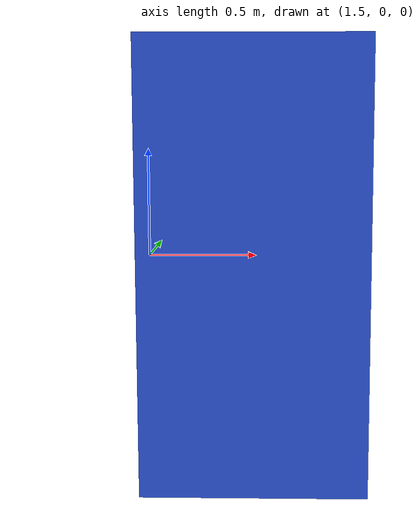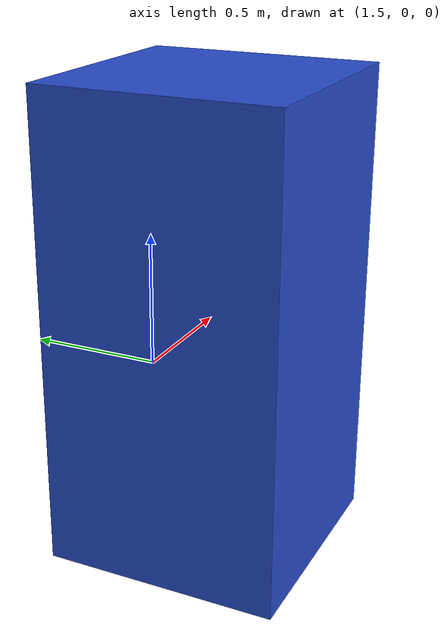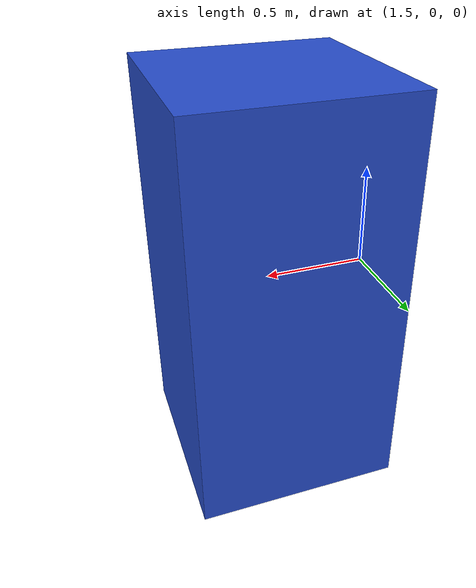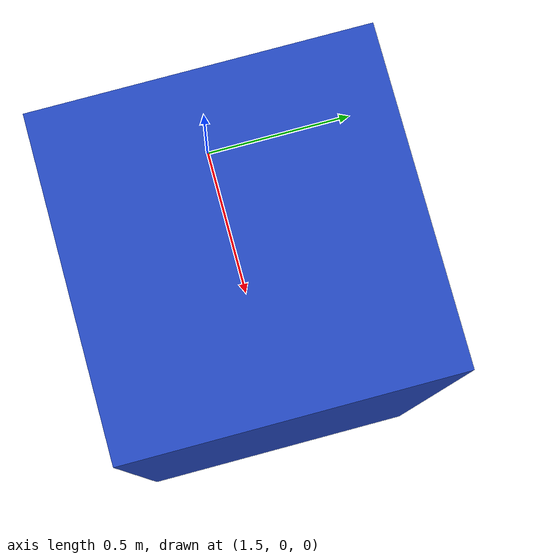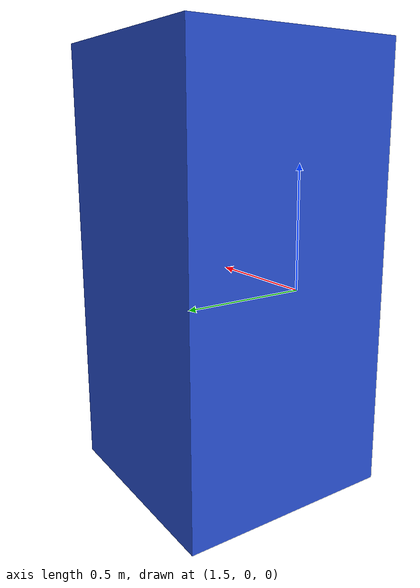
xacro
<?xml version="1.0"?>

<robot name="simple_box">
  <link name="my_box">
    <inertial>
      <origin xyz="2 0 0" />
      <mass value="1.0" />
      <inertia  ixx="1.0" ixy="0.0"  ixz="0.0"  iyy="100.0"  iyz="0.0"  izz="1.0" />
    </inertial>
    <visual>
      <origin xyz="2 0 0"/>
      <geometry>
        <box size="1 1 2" />
      </geometry>
    </visual>
    <collision>
      <origin xyz="2 0 0"/>
      <geometry>
        <box size="1 1 2" />
      </geometry>
    </collision>
  </link>
  <gazebo reference="my_box">
    <material>Gazebo/Blue</material>
  </gazebo>
</robot>
